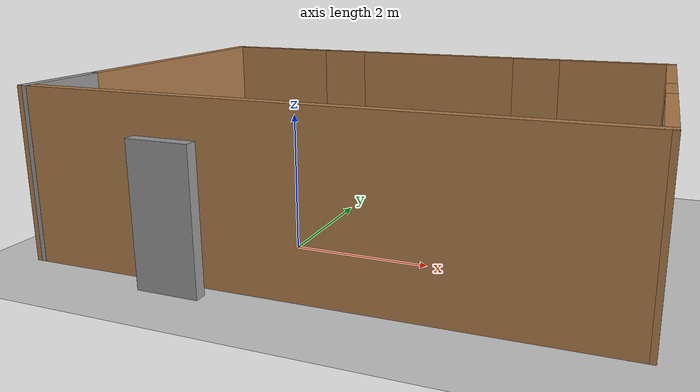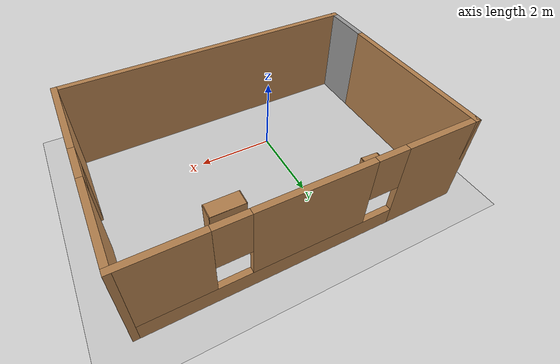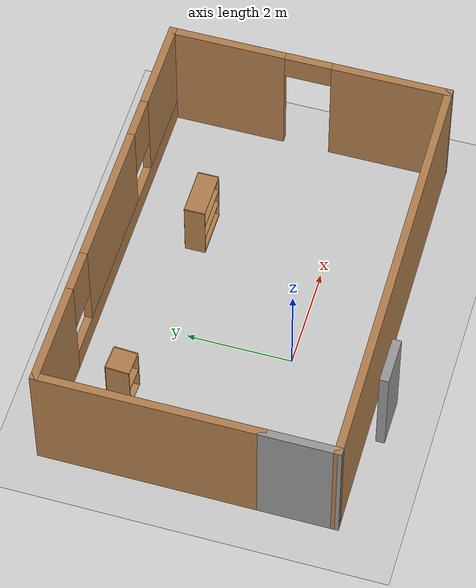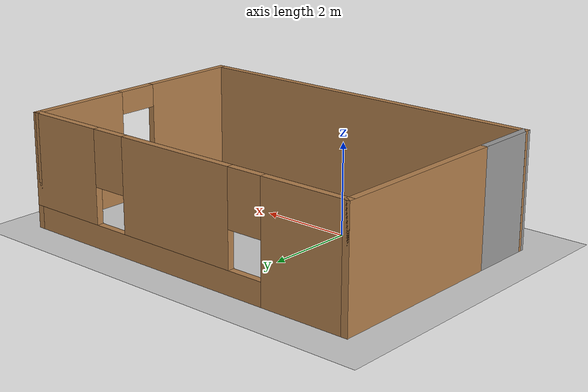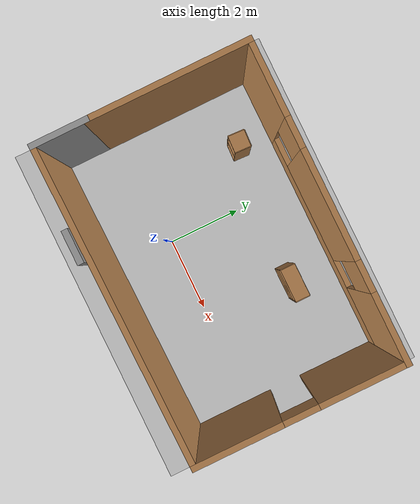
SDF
<sdf version="1.7">
 <world name="default">
  <light name="sun" type="directional">
   <pose>0 0 10 0 -0 0</pose>
   <diffuse>0.8 0.8 0.8 1</diffuse>
   <specular>0.2 0.2 0.2 1</specular>
   <attenuation>
    <range>1000</range>
    <constant>0.9</constant>
    <linear>0.01</linear>
    <quadratic>0.001</quadratic>
   </attenuation>
   <direction>-0.5 0.1 -0.9</direction>
   <spot><inner_angle>0</inner_angle><outer_angle>0</outer_angle><falloff>0</falloff></spot>
  </light>
  <model name="ground_plane">
   <static>1</static>
   <link name="link">
    <collision name="collision">
     <geometry><plane><normal>0 0 1</normal><size>100 100</size></plane></geometry>
     <surface><friction><ode><mu>100</mu><mu2>50</mu2></ode></friction></surface>
    </collision>
    <visual name="visual">
     <cast_shadows>0</cast_shadows>
     <geometry><plane><normal>0 0 1</normal><size>100 100</size></plane></geometry>
     <material>
      <script><uri>file://media/materials/scripts/gazebo.material</uri><name>Gazebo/Grey</name></script>
     </material>
    </visual>
   </link>
  </model>
  <gravity>0 0 -9.8</gravity>
  <magnetic_field>6e-06 2.3e-05 -4.2e-05</magnetic_field>
  <atmosphere type="adiabatic"/>
  <physics type="ode">
   <max_step_size>0.001</max_step_size>
   <real_time_factor>1</real_time_factor>
   <real_time_update_rate>1000</real_time_update_rate>
  </physics>
  <scene><ambient>0.4 0.4 0.4 1</ambient><background>0.7 0.7 0.7 1</background><shadows>1</shadows></scene>
  <audio><device>default</device></audio>
  <spherical_coordinates>
   <surface_model>EARTH_WGS84</surface_model>
   <latitude_deg>0</latitude_deg>
   <longitude_deg>0</longitude_deg>
   <elevation>0</elevation>
   <heading_deg>0</heading_deg>
  </spherical_coordinates>
  <model name="cabinet">
   <static>1</static>
   <link name="cabinet_bottom_plate">
    <inertial>
     <pose>0 0 -1 0 -0 0</pose>
     <inertia><ixx>2.05</ixx><ixy>0</ixy><ixz>0</ixz><iyy>2.05</iyy><iyz>0</iyz><izz>2.05</izz></inertia>
     <mass>25</mass>
    </inertial>
    <collision name="cabinet_bottom_plate_geom">
     <pose>0 0 0.01 0 -0 0</pose>
     <geometry><box><size>0.45 0.45 0.02</size></box></geometry>
    </collision>
    <visual name="cabinet_bottom_plate_geom_visual">
     <pose>0 0 0.01 0 -0 0</pose>
     <geometry><box><size>0.45 0.45 0.02</size></box></geometry>
     <material>
      <script><uri>file://media/materials/scripts/gazebo.material</uri><name>Gazebo/Wood</name></script>
     </material>
    </visual>
    <collision name="cabinet_bottom_plate_geom_cabinet_back_plate">
     <pose>0.235 0 0.51 0 -0 0</pose>
     <geometry><box><size>0.02 0.45 1.02</size></box></geometry>
    </collision>
    <visual name="cabinet_bottom_plate_geom_cabinet_back_plate_visual">
     <pose>0.235 0 0.51 0 -0 0</pose>
     <geometry><box><size>0.02 0.45 1.02</size></box></geometry>
     <material>
      <script><uri>file://media/materials/scripts/gazebo.material</uri><name>Gazebo/Wood</name></script>
     </material>
    </visual>
    <collision name="cabinet_bottom_plate_geom_cabinet_left_plate">
     <pose>0 0.235 0.51 0 -0 0</pose>
     <geometry><box><size>0.45 0.02 1.02</size></box></geometry>
    </collision>
    <visual name="cabinet_bottom_plate_geom_cabinet_left_plate_visual">
     <pose>0 0.235 0.51 0 -0 0</pose>
     <geometry><box><size>0.45 0.02 1.02</size></box></geometry>
     <material>
      <script><uri>file://media/materials/scripts/gazebo.material</uri><name>Gazebo/Wood</name></script>
     </material>
    </visual>
    <collision name="cabinet_bottom_plate_geom_cabinet_middle_plate">
     <pose>0 0 0.51 0 -0 0</pose>
     <geometry><box><size>0.45 0.45 0.02</size></box></geometry>
    </collision>
    <visual name="cabinet_bottom_plate_geom_cabinet_middle_plate_visual">
     <pose>0 0 0.51 0 -0 0</pose>
     <geometry><box><size>0.45 0.45 0.02</size></box></geometry>
     <material>
      <script><uri>file://media/materials/scripts/gazebo.material</uri><name>Gazebo/Wood</name></script>
     </material>
    </visual>
    <collision name="cabinet_bottom_plate_geom_cabinet_right_plate">
     <pose>0 -0.235 0.51 0 -0 0</pose>
     <geometry><box><size>0.45 0.02 1.02</size></box></geometry>
    </collision>
    <visual name="cabinet_bottom_plate_geom_cabinet_right_plate_visual">
     <pose>0 -0.235 0.51 0 -0 0</pose>
     <geometry><box><size>0.45 0.02 1.02</size></box></geometry>
     <material>
      <script><uri>file://media/materials/scripts/gazebo.material</uri><name>Gazebo/Wood</name></script>
     </material>
    </visual>
    <collision name="cabinet_bottom_plate_geom_cabinet_top_plate">
     <pose>0 0 1.01 0 -0 0</pose>
     <geometry><box><size>0.45 0.45 0.02</size></box></geometry>
    </collision>
    <visual name="cabinet_bottom_plate_geom_cabinet_top_plate_visual">
     <pose>0 0 1.01 0 -0 0</pose>
     <geometry><box><size>0.45 0.45 0.02</size></box></geometry>
     <material>
      <script><uri>file://media/materials/scripts/gazebo.material</uri><name>Gazebo/Wood</name></script>
     </material>
    </visual>
   </link>
   <pose>-1.49443 2.75897 0 0 -0 1.52278</pose>
  </model>
  <model name="bookshelf">
   <static>1</static>
   <link name="link">
    <inertial><mass>1</mass></inertial>
    <collision name="back">
     <pose>0 0.005 0.6 0 -0 0</pose>
     <geometry><box><size>0.9 0.01 1.2</size></box></geometry>
    </collision>
    <visual name="visual1">
     <pose>0 0.005 0.6 0 -0 0</pose>
     <geometry><box><size>0.9 0.01 1.2</size></box></geometry>
     <material>
      <script><uri>file://media/materials/scripts/gazebo.material</uri><name>Gazebo/Wood</name></script>
     </material>
    </visual>
    <collision name="left_side">
     <pose>0.45 -0.195 0.6 0 -0 0</pose>
     <geometry><box><size>0.02 0.4 1.2</size></box></geometry>
    </collision>
    <visual name="visual2">
     <pose>0.45 -0.195 0.6 0 -0 0</pose>
     <geometry><box><size>0.02 0.4 1.2</size></box></geometry>
     <material>
      <script><uri>file://media/materials/scripts/gazebo.material</uri><name>Gazebo/Wood</name></script>
     </material>
    </visual>
    <collision name="right_side">
     <pose>-0.45 -0.195 0.6 0 -0 0</pose>
     <geometry><box><size>0.02 0.4 1.2</size></box></geometry>
    </collision>
    <visual name="visual3">
     <pose>-0.45 -0.195 0.6 0 -0 0</pose>
     <geometry><box><size>0.02 0.4 1.2</size></box></geometry>
     <material>
      <script><uri>file://media/materials/scripts/gazebo.material</uri><name>Gazebo/Wood</name></script>
     </material>
    </visual>
    <collision name="bottom">
     <pose>0 -0.195 0.03 0 -0 0</pose>
     <geometry><box><size>0.88 0.4 0.06</size></box></geometry>
    </collision>
    <visual name="visual4">
     <pose>0 -0.195 0.03 0 -0 0</pose>
     <geometry><box><size>0.88 0.4 0.06</size></box></geometry>
     <material>
      <script><uri>file://media/materials/scripts/gazebo.material</uri><name>Gazebo/Wood</name></script>
     </material>
    </visual>
    <collision name="top">
     <pose>0 -0.195 1.19 0 -0 0</pose>
     <geometry><box><size>0.88 0.4 0.02</size></box></geometry>
    </collision>
    <visual name="visual5">
     <pose>0 -0.195 1.19 0 -0 0</pose>
     <geometry><box><size>0.88 0.4 0.02</size></box></geometry>
     <material>
      <script><uri>file://media/materials/scripts/gazebo.material</uri><name>Gazebo/Wood</name></script>
     </material>
    </visual>
    <collision name="low_shelf">
     <pose>0 -0.195 0.43 0 -0 0</pose>
     <geometry><box><size>0.88 0.4 0.02</size></box></geometry>
    </collision>
    <visual name="visual6">
     <pose>0 -0.195 0.43 0 -0 0</pose>
     <geometry><box><size>0.88 0.4 0.02</size></box></geometry>
     <material>
      <script><uri>file://media/materials/scripts/gazebo.material</uri><name>Gazebo/Wood</name></script>
     </material>
    </visual>
    <collision name="high_shelf">
     <pose>0 -0.195 0.8 0 -0 0</pose>
     <geometry><box><size>0.88 0.4 0.02</size></box></geometry>
    </collision>
    <visual name="visual7">
     <pose>0 -0.195 0.8 0 -0 0</pose>
     <geometry><box><size>0.88 0.4 0.02</size></box></geometry>
     <material>
      <script><uri>file://media/materials/scripts/gazebo.material</uri><name>Gazebo/Wood</name></script>
     </material>
    </visual>
   </link>
   <pose>2.36857 2.62385 0 0 -0 0</pose>
  </model>
  <model name="test">
   <pose>0.9 1.03454 0 0 -0 0</pose>
   <link name="Door_0">
    <collision name="Door_0_Collision">
     <geometry><box><size>0.9 0.17 2</size></box></geometry>
     <pose>0 0 1 0 -0 0</pose>
    </collision>
    <visual name="Door_0_Visual">
     <pose>0 0 1 0 -0 0</pose>
     <geometry><box><size>0.9 0.17 2</size></box></geometry>
     <material>
      <script><uri>file://media/materials/scripts/gazebo.material</uri><name>Gazebo/Grey</name></script>
     </material>
    </visual>
    <pose>-1.6885 -3.03468 0 0 -0 0</pose>
   </link>
   <link name="Wall_2">
    <collision name="Wall_2_Collision">
     <geometry><box><size>1.5 0.15 2.5</size></box></geometry>
     <pose>0 0 1.25 0 -0 0</pose>
    </collision>
    <visual name="Wall_2_Visual">
     <pose>0 0 1.25 0 -0 0</pose>
     <geometry><box><size>1.5 0.15 2.5</size></box></geometry>
     <material>
      <script><uri>file://media/materials/scripts/gazebo.material</uri><name>Gazebo/Grey</name></script>
      <ambient>1 1 1 1</ambient>
     </material>
     <meta><layer>0</layer></meta>
    </visual>
    <pose>-4.05 -2.04954 0 0 -0 1.5708</pose>
   </link>
   <link name="Wall_3">
    <collision name="Wall_3_Collision">
     <geometry><box><size>4.25 0.15 2.5</size></box></geometry>
     <pose>0 0 1.25 0 -0 0</pose>
    </collision>
    <visual name="Wall_3_Visual">
     <pose>0 0 1.25 0 -0 0</pose>
     <geometry><box><size>4.25 0.15 2.5</size></box></geometry>
     <material>
      <script><uri>file://media/materials/scripts/gazebo.material</uri><name>Gazebo/Wood</name></script>
      <ambient>1 1 1 1</ambient>
     </material>
     <meta><layer>0</layer></meta>
    </visual>
    <pose>-4.05 0.67546 0 0 -0 1.5708</pose>
   </link>
   <link name="Wall_4">
    <pose>-0 2.72546 0 0 -0 0</pose>
    <visual name="Wall_4_Visual_0">
     <pose>-3.12686 0 1.25 0 -0 0</pose>
     <geometry><box><size>1.99628 0.15 2.5</size></box></geometry>
     <material>
      <script><uri>file://media/materials/scripts/gazebo.material</uri><name>Gazebo/Wood</name></script>
      <ambient>1 1 1 1</ambient>
     </material>
     <meta><layer>0</layer></meta>
    </visual>
    <collision name="Wall_4_Collision_0">
     <geometry><box><size>1.99628 0.15 2.5</size></box></geometry>
     <pose>-3.12686 0 1.25 0 -0 0</pose>
    </collision>
    <visual name="Wall_4_Visual_1">
     <pose>0.998138 0 0.25 0 -0 0</pose>
     <geometry><box><size>6.25373 0.15 0.5</size></box></geometry>
     <material>
      <script><uri>file://media/materials/scripts/gazebo.material</uri><name>Gazebo/Wood</name></script>
      <ambient>1 1 1 1</ambient>
     </material>
     <meta><layer>0</layer></meta>
    </visual>
    <collision name="Wall_4_Collision_1">
     <geometry><box><size>6.25373 0.15 0.5</size></box></geometry>
     <pose>0.998138 0 0.25 0 -0 0</pose>
    </collision>
    <visual name="Wall_4_Visual_2">
     <pose>0.07144 0 1.5 0 -0 0</pose>
     <geometry><box><size>2.80033 0.15 2</size></box></geometry>
     <material>
      <script><uri>file://media/materials/scripts/gazebo.material</uri><name>Gazebo/Wood</name></script>
      <ambient>1 1 1 1</ambient>
     </material>
     <meta><layer>0</layer></meta>
    </visual>
    <collision name="Wall_4_Collision_2">
     <geometry><box><size>2.80033 0.15 2</size></box></geometry>
     <pose>0.07144 0 1.5 0 -0 0</pose>
    </collision>
    <visual name="Wall_4_Visual_3">
     <pose>3.1983 0 1.5 0 -0 0</pose>
     <geometry><box><size>1.85339 0.15 2</size></box></geometry>
     <material>
      <script><uri>file://media/materials/scripts/gazebo.material</uri><name>Gazebo/Wood</name></script>
      <ambient>1 1 1 1</ambient>
     </material>
     <meta><layer>0</layer></meta>
    </visual>
    <collision name="Wall_4_Collision_3">
     <geometry><box><size>1.85339 0.15 2</size></box></geometry>
     <pose>3.1983 0 1.5 0 -0 0</pose>
    </collision>
    <visual name="Wall_4_Visual_4">
     <pose>-1.72873 0 1.9 0 -0 0</pose>
     <geometry><box><size>0.8 0.15 1.2</size></box></geometry>
     <material>
      <script><uri>file://media/materials/scripts/gazebo.material</uri><name>Gazebo/Wood</name></script>
      <ambient>1 1 1 1</ambient>
     </material>
     <meta><layer>0</layer></meta>
    </visual>
    <collision name="Wall_4_Collision_4">
     <geometry><box><size>0.8 0.15 1.2</size></box></geometry>
     <pose>-1.72873 0 1.9 0 -0 0</pose>
    </collision>
    <visual name="Wall_4_Visual_5">
     <pose>1.8716 0 1.9 0 -0 0</pose>
     <geometry><box><size>0.8 0.15 1.2</size></box></geometry>
     <material>
      <script><uri>file://media/materials/scripts/gazebo.material</uri><name>Gazebo/Wood</name></script>
      <ambient>1 1 1 1</ambient>
     </material>
     <meta><layer>0</layer></meta>
    </visual>
    <collision name="Wall_4_Collision_5">
     <geometry><box><size>0.8 0.15 1.2</size></box></geometry>
     <pose>1.8716 0 1.9 0 -0 0</pose>
    </collision>
   </link>
   <link name="Wall_5">
    <pose>4.05 0.05046 0 0 -0 -1.5708</pose>
    <visual name="Wall_5_Visual_0">
     <pose>-1.60618 0 1.25 0 -0 0</pose>
     <geometry><box><size>2.28764 0.15 2.5</size></box></geometry>
     <material>
      <script><uri>file://media/materials/scripts/gazebo.material</uri><name>Gazebo/Wood</name></script>
      <ambient>1 1 1 1</ambient>
     </material>
     <meta><layer>0</layer></meta>
    </visual>
    <collision name="Wall_5_Collision_0">
     <geometry><box><size>2.28764 0.15 2.5</size></box></geometry>
     <pose>-1.60618 0 1.25 0 -0 0</pose>
    </collision>
    <visual name="Wall_5_Visual_1">
     <pose>1.59382 0 1.25 0 -0 0</pose>
     <geometry><box><size>2.31236 0.15 2.5</size></box></geometry>
     <material>
      <script><uri>file://media/materials/scripts/gazebo.material</uri><name>Gazebo/Wood</name></script>
      <ambient>1 1 1 1</ambient>
     </material>
     <meta><layer>0</layer></meta>
    </visual>
    <collision name="Wall_5_Collision_1">
     <geometry><box><size>2.31236 0.15 2.5</size></box></geometry>
     <pose>1.59382 0 1.25 0 -0 0</pose>
    </collision>
    <visual name="Wall_5_Visual_2">
     <pose>-0.012355 0 2.25 0 -0 0</pose>
     <geometry><box><size>0.9 0.15 0.5</size></box></geometry>
     <material>
      <script><uri>file://media/materials/scripts/gazebo.material</uri><name>Gazebo/Wood</name></script>
      <ambient>1 1 1 1</ambient>
     </material>
     <meta><layer>0</layer></meta>
    </visual>
    <collision name="Wall_5_Collision_2">
     <geometry><box><size>0.9 0.15 0.5</size></box></geometry>
     <pose>-0.012355 0 2.25 0 -0 0</pose>
    </collision>
   </link>
   <link name="Wall_7">
    <collision name="Wall_7_Collision">
     <geometry><box><size>8.25062 0.15 2.5</size></box></geometry>
     <pose>0 0 1.25 0 -0 0</pose>
    </collision>
    <visual name="Wall_7_Visual">
     <pose>0 0 1.25 0 -0 0</pose>
     <geometry><box><size>8.25062 0.15 2.5</size></box></geometry>
     <material>
      <script><uri>file://media/materials/scripts/gazebo.material</uri><name>Gazebo/Wood</name></script>
      <ambient>1 1 1 1</ambient>
     </material>
     <meta><layer>0</layer></meta>
    </visual>
    <pose>-0 -2.67454 0 0 -0 0.012345</pose>
   </link>
   <static>1</static>
  </model>
 </world>
</sdf>
